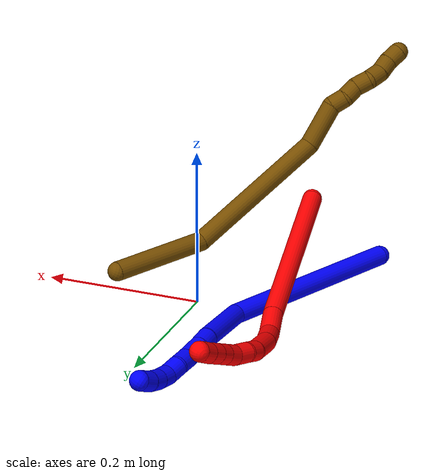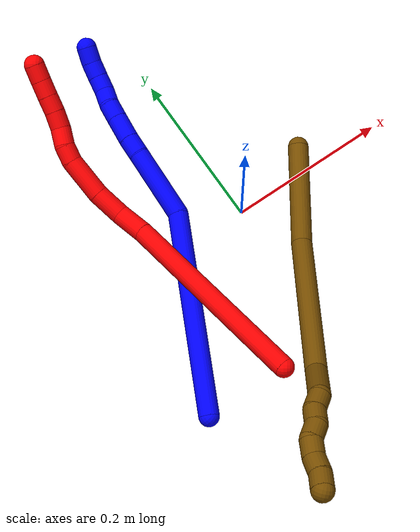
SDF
<sdf version="1.7">
 <world name="default">
  <model name="photoneo_s_sensor">
   <static>1</static>
   <pose>0 0 2 1.57079 1.57079 3.14159</pose>
   <link name="link">
    <inertial><mass>0.1</mass></inertial>
    <sensor name="sensor" type="depth">
     <update_rate>30</update_rate>
     <camera>
      <horizontal_fov>1.22</horizontal_fov>
      <image><width>1920</width><height>1200</height><format>B8G8R8</format></image>
      <clip><near>0.1</near><far>4</far></clip>
      <depth_camera><output>points</output></depth_camera>
     </camera>
     <plugin name="camera_plugin" filename="libgazebo_ros_depth_camera.so">
      <baseline>0.2</baseline>
      <alwaysOn>1</alwaysOn>
      <updateRate>0.0</updateRate>
      <cameraName>camera_ir</cameraName>
      <imageTopicName>/camera/color/image_raw</imageTopicName>
      <cameraInfoTopicName>/camera/color/camera_info</cameraInfoTopicName>
      <depthImageTopicName>/camera/depth/image_raw</depthImageTopicName>
      <depthImageCameraInfoTopicName>/camera/depth/camera_info</depthImageCameraInfoTopicName>
      <pointCloudTopicName>/camera/depth/points</pointCloudTopicName>
      <frameName>fr_optical</frameName>
      <pointCloudCutoff>0.1</pointCloudCutoff>
      <pointCloudCutoffMax>2.0</pointCloudCutoffMax>
      <distortionK1>0</distortionK1>
      <distortionK2>0</distortionK2>
      <distortionK3>0</distortionK3>
      <distortionT1>0</distortionT1>
      <distortionT2>0</distortionT2>
      <CxPrime>0</CxPrime>
      <Cx>0</Cx>
      <Cy>0</Cy>
      <focalLength>0</focalLength>
      <hackBaseline>0</hackBaseline>
     </plugin>
    </sensor>
   </link>
  </model>
  <model name="bin">
   <static>1</static>
   <link name="bottom">
    <collision name="collision-bottom">
     <pose>0 0 -0.01 0 -0 0</pose>
     <geometry><box><size>0.8 0.6 0.02</size></box></geometry>
     <surface>
      <friction><ode><mu>100</mu><mu2>100</mu2></ode></friction>
      <contact><collide_bitmask>65535</collide_bitmask></contact>
     </surface>
    </collision>
   </link>
   <link name="west_wall">
    <collision name="collision-west_wall">
     <pose>-0.41 0 0.1 0 -0 0</pose>
     <geometry><box><size>0.02 0.6 0.2</size></box></geometry>
     <surface>
      <friction><ode><mu>100</mu><mu2>100</mu2></ode></friction>
      <contact><collide_bitmask>65535</collide_bitmask></contact>
     </surface>
    </collision>
   </link>
   <link name="east_wall">
    <collision name="collision-east_wall">
     <pose>0.41 0 0.1 0 -0 0</pose>
     <geometry><box><size>0.02 0.6 0.2</size></box></geometry>
     <surface>
      <friction><ode><mu>100</mu><mu2>100</mu2></ode></friction>
      <contact><collide_bitmask>65535</collide_bitmask></contact>
     </surface>
    </collision>
   </link>
   <link name="south_wall">
    <collision name="collision-south_wall">
     <pose>0 -0.31 0.1 0 -0 0</pose>
     <geometry><box><size>0.8 0.02 0.2</size></box></geometry>
     <surface>
      <friction><ode><mu>100</mu><mu2>100</mu2></ode></friction>
      <contact><collide_bitmask>65535</collide_bitmask></contact>
     </surface>
    </collision>
   </link>
   <link name="north_wall">
    <collision name="collision-north_wall">
     <pose>0 0.31 0.1 0 -0 0</pose>
     <geometry><box><size>0.8 0.02 0.2</size></box></geometry>
     <surface>
      <friction><ode><mu>100</mu><mu2>100</mu2></ode></friction>
      <contact><collide_bitmask>65535</collide_bitmask></contact>
     </surface>
    </collision>
   </link>
  </model>
  <model name="1">
   <static>0</static>
   <link name="1">
    <collision name="collision-cylinder-e_1_1_4">
     <pose>0.029111 0.109974 0.054061 -1.1139 0.233233 -0.145641</pose>
     <geometry><cylinder><radius>0.0125</radius><length>0.251907</length></cylinder></geometry>
     <surface>
      <friction><ode><mu>1.16</mu><mu2>1.16</mu2><slip1>0</slip1><slip2>0</slip2></ode></friction>
      <contact><ode><kp>1e+06</kp><kd>1</kd><max_vel>0</max_vel><min_depth>0.001</min_depth></ode></contact>
     </surface>
    </collision>
    <visual name="visual-cylinder-e_1_1_4">
     <pose>0.029111 0.109974 0.054061 -1.1139 0.233233 -0.145641</pose>
     <geometry><cylinder><radius>0.0125</radius><length>0.251907</length></cylinder></geometry>
     <material><ambient>0 0 1 1</ambient></material>
    </visual>
    <collision name="collision-cylinder-e_2_4_5">
     <pose>0.056324 0.264243 0.113251 -1.45553 -0.042545 0.037904</pose>
     <geometry><cylinder><radius>0.0125</radius><length>0.089263</length></cylinder></geometry>
     <surface>
      <friction><ode><mu>1.16</mu><mu2>1.16</mu2><slip1>0</slip1><slip2>0</slip2></ode></friction>
      <contact><ode><kp>1e+06</kp><kd>1</kd><max_vel>0</max_vel><min_depth>0.001</min_depth></ode></contact>
     </surface>
    </collision>
    <visual name="visual-cylinder-e_2_4_5">
     <pose>0.056324 0.264243 0.113251 -1.45553 -0.042545 0.037904</pose>
     <geometry><cylinder><radius>0.0125</radius><length>0.089263</length></cylinder></geometry>
     <material><ambient>0 0 1 1</ambient></material>
    </visual>
    <collision name="collision-cylinder-e_3_5_6">
     <pose>0.055462 0.320183 0.119123 -1.50702 0.088629 -0.083155</pose>
     <geometry><cylinder><radius>0.0125</radius><length>0.02343</length></cylinder></geometry>
     <surface>
      <friction><ode><mu>1.16</mu><mu2>1.16</mu2><slip1>0</slip1><slip2>0</slip2></ode></friction>
      <contact><ode><kp>1e+06</kp><kd>1</kd><max_vel>0</max_vel><min_depth>0.001</min_depth></ode></contact>
     </surface>
    </collision>
    <visual name="visual-cylinder-e_3_5_6">
     <pose>0.055462 0.320183 0.119123 -1.50702 0.088629 -0.083155</pose>
     <geometry><cylinder><radius>0.0125</radius><length>0.02343</length></cylinder></geometry>
     <material><ambient>0 0 1 1</ambient></material>
    </visual>
    <collision name="collision-cylinder-e_4_6_7">
     <pose>0.058563 0.347696 0.121768 -1.45156 0.128402 -0.113971</pose>
     <geometry><cylinder><radius>0.0125</radius><length>0.032228</length></cylinder></geometry>
     <surface>
      <friction><ode><mu>1.16</mu><mu2>1.16</mu2><slip1>0</slip1><slip2>0</slip2></ode></friction>
      <contact><ode><kp>1e+06</kp><kd>1</kd><max_vel>0</max_vel><min_depth>0.001</min_depth></ode></contact>
     </surface>
    </collision>
    <visual name="visual-cylinder-e_4_6_7">
     <pose>0.058563 0.347696 0.121768 -1.45156 0.128402 -0.113971</pose>
     <geometry><cylinder><radius>0.0125</radius><length>0.032228</length></cylinder></geometry>
     <material><ambient>0 0 1 1</ambient></material>
    </visual>
    <collision name="collision-cylinder-e_5_7_8">
     <pose>0.061497 0.374428 0.125251 -1.42618 0.079157 -0.068473</pose>
     <geometry><cylinder><radius>0.0125</radius><length>0.022026</length></cylinder></geometry>
     <surface>
      <friction><ode><mu>1.16</mu><mu2>1.16</mu2><slip1>0</slip1><slip2>0</slip2></ode></friction>
      <contact><ode><kp>1e+06</kp><kd>1</kd><max_vel>0</max_vel><min_depth>0.001</min_depth></ode></contact>
     </surface>
    </collision>
    <visual name="visual-cylinder-e_5_7_8">
     <pose>0.061497 0.374428 0.125251 -1.42618 0.079157 -0.068473</pose>
     <geometry><cylinder><radius>0.0125</radius><length>0.022026</length></cylinder></geometry>
     <material><ambient>0 0 1 1</ambient></material>
    </visual>
    <collision name="collision-cylinder-e_6_8_9">
     <pose>0.065758 0.394836 0.128829 -1.3647 0.334612 -0.272752</pose>
     <geometry><cylinder><radius>0.0125</radius><length>0.020646</length></cylinder></geometry>
     <surface>
      <friction><ode><mu>1.16</mu><mu2>1.16</mu2><slip1>0</slip1><slip2>0</slip2></ode></friction>
      <contact><ode><kp>1e+06</kp><kd>1</kd><max_vel>0</max_vel><min_depth>0.001</min_depth></ode></contact>
     </surface>
    </collision>
    <visual name="visual-cylinder-e_6_8_9">
     <pose>0.065758 0.394836 0.128829 -1.3647 0.334612 -0.272752</pose>
     <geometry><cylinder><radius>0.0125</radius><length>0.020646</length></cylinder></geometry>
     <material><ambient>0 0 1 1</ambient></material>
    </visual>
    <collision name="collision-cylinder-e_7_9_10">
     <pose>0.068948 0.414186 0.133451 -1.30899 -0.019641 0.015071</pose>
     <geometry><cylinder><radius>0.0125</radius><length>0.020307</length></cylinder></geometry>
     <surface>
      <friction><ode><mu>1.16</mu><mu2>1.16</mu2><slip1>0</slip1><slip2>0</slip2></ode></friction>
      <contact><ode><kp>1e+06</kp><kd>1</kd><max_vel>0</max_vel><min_depth>0.001</min_depth></ode></contact>
     </surface>
    </collision>
    <visual name="visual-cylinder-e_7_9_10">
     <pose>0.068948 0.414186 0.133451 -1.30899 -0.019641 0.015071</pose>
     <geometry><cylinder><radius>0.0125</radius><length>0.020307</length></cylinder></geometry>
     <material><ambient>0 0 1 1</ambient></material>
    </visual>
    <collision name="collision-cylinder-e_8_10_11">
     <pose>0.067218 0.433355 0.139254 -1.24384 -0.153639 0.110236</pose>
     <geometry><cylinder><radius>0.0125</radius><length>0.02001</length></cylinder></geometry>
     <surface>
      <friction><ode><mu>1.16</mu><mu2>1.16</mu2><slip1>0</slip1><slip2>0</slip2></ode></friction>
      <contact><ode><kp>1e+06</kp><kd>1</kd><max_vel>0</max_vel><min_depth>0.001</min_depth></ode></contact>
     </surface>
    </collision>
    <visual name="visual-cylinder-e_8_10_11">
     <pose>0.067218 0.433355 0.139254 -1.24384 -0.153639 0.110236</pose>
     <geometry><cylinder><radius>0.0125</radius><length>0.02001</length></cylinder></geometry>
     <material><ambient>0 0 1 1</ambient></material>
    </visual>
    <collision name="collision-cylinder-e_9_11_2">
     <pose>0.06329 0.451406 0.146971 -1.08915 -0.239777 0.145667</pose>
     <geometry><cylinder><radius>0.0125</radius><length>0.020183</length></cylinder></geometry>
     <surface>
      <friction><ode><mu>1.16</mu><mu2>1.16</mu2><slip1>0</slip1><slip2>0</slip2></ode></friction>
      <contact><ode><kp>1e+06</kp><kd>1</kd><max_vel>0</max_vel><min_depth>0.001</min_depth></ode></contact>
     </surface>
    </collision>
    <visual name="visual-cylinder-e_9_11_2">
     <pose>0.06329 0.451406 0.146971 -1.08915 -0.239777 0.145667</pose>
     <geometry><cylinder><radius>0.0125</radius><length>0.020183</length></cylinder></geometry>
     <material><ambient>0 0 1 1</ambient></material>
    </visual>
    <collision name="collision-sphere-2">
     <pose>0.060894 0.460093 0.151512 0 -0 0</pose>
     <geometry><sphere><radius>0.0125</radius></sphere></geometry>
     <surface>
      <friction><ode><mu>1.16</mu><mu2>1.16</mu2><slip1>0</slip1><slip2>0</slip2></ode></friction>
      <contact><ode><kp>1e+06</kp><kd>1</kd><max_vel>0</max_vel><min_depth>0.001</min_depth></ode></contact>
     </surface>
    </collision>
    <visual name="visual-sphere-2">
     <pose>0.060894 0.460093 0.151512 0 -0 0</pose>
     <geometry><sphere><radius>0.0125</radius></sphere></geometry>
     <material><ambient>0 0 1 1</ambient></material>
    </visual>
    <collision name="collision-sphere-11">
     <pose>0.065687 0.442719 0.14243 0 -0 0</pose>
     <geometry><sphere><radius>0.0125</radius></sphere></geometry>
     <surface>
      <friction><ode><mu>1.16</mu><mu2>1.16</mu2><slip1>0</slip1><slip2>0</slip2></ode></friction>
      <contact><ode><kp>1e+06</kp><kd>1</kd><max_vel>0</max_vel><min_depth>0.001</min_depth></ode></contact>
     </surface>
    </collision>
    <visual name="visual-sphere-11">
     <pose>0.065687 0.442719 0.14243 0 -0 0</pose>
     <geometry><sphere><radius>0.0125</radius></sphere></geometry>
     <material><ambient>0 0 1 1</ambient></material>
    </visual>
    <collision name="collision-sphere-10">
     <pose>0.068749 0.423992 0.136079 0 -0 0</pose>
     <geometry><sphere><radius>0.0125</radius></sphere></geometry>
     <surface>
      <friction><ode><mu>1.16</mu><mu2>1.16</mu2><slip1>0</slip1><slip2>0</slip2></ode></friction>
      <contact><ode><kp>1e+06</kp><kd>1</kd><max_vel>0</max_vel><min_depth>0.001</min_depth></ode></contact>
     </surface>
    </collision>
    <visual name="visual-sphere-10">
     <pose>0.068749 0.423992 0.136079 0 -0 0</pose>
     <geometry><sphere><radius>0.0125</radius></sphere></geometry>
     <material><ambient>0 0 1 1</ambient></material>
    </visual>
    <collision name="collision-sphere-9">
     <pose>0.069148 0.40438 0.130824 0 -0 0</pose>
     <geometry><sphere><radius>0.0125</radius></sphere></geometry>
     <surface>
      <friction><ode><mu>1.16</mu><mu2>1.16</mu2><slip1>0</slip1><slip2>0</slip2></ode></friction>
      <contact><ode><kp>1e+06</kp><kd>1</kd><max_vel>0</max_vel><min_depth>0.001</min_depth></ode></contact>
     </surface>
    </collision>
    <visual name="visual-sphere-9">
     <pose>0.069148 0.40438 0.130824 0 -0 0</pose>
     <geometry><sphere><radius>0.0125</radius></sphere></geometry>
     <material><ambient>0 0 1 1</ambient></material>
    </visual>
    <collision name="collision-sphere-4">
     <pose>0.058222 0.219947 0.108122 0 -0 0</pose>
     <geometry><sphere><radius>0.0125</radius></sphere></geometry>
     <surface>
      <friction><ode><mu>1.16</mu><mu2>1.16</mu2><slip1>0</slip1><slip2>0</slip2></ode></friction>
      <contact><ode><kp>1e+06</kp><kd>1</kd><max_vel>0</max_vel><min_depth>0.001</min_depth></ode></contact>
     </surface>
    </collision>
    <visual name="visual-sphere-4">
     <pose>0.058222 0.219947 0.108122 0 -0 0</pose>
     <geometry><sphere><radius>0.0125</radius></sphere></geometry>
     <material><ambient>0 0 1 1</ambient></material>
    </visual>
    <collision name="collision-sphere-1">
     <geometry><sphere><radius>0.0125</radius></sphere></geometry>
     <surface>
      <friction><ode><mu>1.16</mu><mu2>1.16</mu2><slip1>0</slip1><slip2>0</slip2></ode></friction>
      <contact><ode><kp>1e+06</kp><kd>1</kd><max_vel>0</max_vel><min_depth>0.001</min_depth></ode></contact>
     </surface>
    </collision>
    <visual name="visual-sphere-1">
     <geometry><sphere><radius>0.0125</radius></sphere></geometry>
     <material><ambient>0 0 1 1</ambient></material>
    </visual>
    <collision name="collision-sphere-8">
     <pose>0.062368 0.385292 0.126833 0 -0 0</pose>
     <geometry><sphere><radius>0.0125</radius></sphere></geometry>
     <surface>
      <friction><ode><mu>1.16</mu><mu2>1.16</mu2><slip1>0</slip1><slip2>0</slip2></ode></friction>
      <contact><ode><kp>1e+06</kp><kd>1</kd><max_vel>0</max_vel><min_depth>0.001</min_depth></ode></contact>
     </surface>
    </collision>
    <visual name="visual-sphere-8">
     <pose>0.062368 0.385292 0.126833 0 -0 0</pose>
     <geometry><sphere><radius>0.0125</radius></sphere></geometry>
     <material><ambient>0 0 1 1</ambient></material>
    </visual>
    <collision name="collision-sphere-5">
     <pose>0.054425 0.308538 0.11838 0 -0 0</pose>
     <geometry><sphere><radius>0.0125</radius></sphere></geometry>
     <surface>
      <friction><ode><mu>1.16</mu><mu2>1.16</mu2><slip1>0</slip1><slip2>0</slip2></ode></friction>
      <contact><ode><kp>1e+06</kp><kd>1</kd><max_vel>0</max_vel><min_depth>0.001</min_depth></ode></contact>
     </surface>
    </collision>
    <visual name="visual-sphere-5">
     <pose>0.054425 0.308538 0.11838 0 -0 0</pose>
     <geometry><sphere><radius>0.0125</radius></sphere></geometry>
     <material><ambient>0 0 1 1</ambient></material>
    </visual>
    <collision name="collision-sphere-6">
     <pose>0.056499 0.331828 0.119867 0 -0 0</pose>
     <geometry><sphere><radius>0.0125</radius></sphere></geometry>
     <surface>
      <friction><ode><mu>1.16</mu><mu2>1.16</mu2><slip1>0</slip1><slip2>0</slip2></ode></friction>
      <contact><ode><kp>1e+06</kp><kd>1</kd><max_vel>0</max_vel><min_depth>0.001</min_depth></ode></contact>
     </surface>
    </collision>
    <visual name="visual-sphere-6">
     <pose>0.056499 0.331828 0.119867 0 -0 0</pose>
     <geometry><sphere><radius>0.0125</radius></sphere></geometry>
     <material><ambient>0 0 1 1</ambient></material>
    </visual>
    <collision name="collision-sphere-7">
     <pose>0.060626 0.363564 0.123669 0 -0 0</pose>
     <geometry><sphere><radius>0.0125</radius></sphere></geometry>
     <surface>
      <friction><ode><mu>1.16</mu><mu2>1.16</mu2><slip1>0</slip1><slip2>0</slip2></ode></friction>
      <contact><ode><kp>1e+06</kp><kd>1</kd><max_vel>0</max_vel><min_depth>0.001</min_depth></ode></contact>
     </surface>
    </collision>
    <visual name="visual-sphere-7">
     <pose>0.060626 0.363564 0.123669 0 -0 0</pose>
     <geometry><sphere><radius>0.0125</radius></sphere></geometry>
     <material><ambient>0 0 1 1</ambient></material>
    </visual>
    <inertial>
     <pose>0.044565 0.225179 0.088649 0 -0 0</pose>
     <mass>0.5</mass>
     <inertia>
      <ixx>0.001185</ixx>
      <ixy>0</ixy>
      <ixz>0</ixz>
      <iyy>0.000485</iyy>
      <iyz>0</iyz>
      <izz>-0.001544</izz>
     </inertia>
    </inertial>
   </link>
   <pose>-0.176173 -0.187347 0.014209 -0.011574 1.08673 0.049725</pose>
  </model>
  <model name="2">
   <static>0</static>
   <link name="2">
    <collision name="collision-cylinder-e_1_1_4">
     <pose>0.025242 0.085342 -0.085449 -2.35682 0.206047 -0.489631</pose>
     <geometry><cylinder><radius>0.0125</radius><length>0.246755</length></cylinder></geometry>
     <surface>
      <friction><ode><mu>1.16</mu><mu2>1.16</mu2><slip1>0</slip1><slip2>0</slip2></ode></friction>
      <contact><ode><kp>1e+06</kp><kd>1</kd><max_vel>0</max_vel><min_depth>0.001</min_depth></ode></contact>
     </surface>
    </collision>
    <visual name="visual-cylinder-e_1_1_4">
     <pose>0.025242 0.085342 -0.085449 -2.35682 0.206047 -0.489631</pose>
     <geometry><cylinder><radius>0.0125</radius><length>0.246755</length></cylinder></geometry>
     <material><ambient>1 0 0 1</ambient></material>
    </visual>
    <collision name="collision-cylinder-e_2_4_5">
     <pose>0.054332 0.182892 -0.185481 -2.4446 0.199623 -0.537905</pose>
     <geometry><cylinder><radius>0.0125</radius><length>0.038807</length></cylinder></geometry>
     <surface>
      <friction><ode><mu>1.16</mu><mu2>1.16</mu2><slip1>0</slip1><slip2>0</slip2></ode></friction>
      <contact><ode><kp>1e+06</kp><kd>1</kd><max_vel>0</max_vel><min_depth>0.001</min_depth></ode></contact>
     </surface>
    </collision>
    <visual name="visual-cylinder-e_2_4_5">
     <pose>0.054332 0.182892 -0.185481 -2.4446 0.199623 -0.537905</pose>
     <geometry><cylinder><radius>0.0125</radius><length>0.038807</length></cylinder></geometry>
     <material><ambient>1 0 0 1</ambient></material>
    </visual>
    <collision name="collision-cylinder-e_3_5_6">
     <pose>0.054674 0.207017 -0.213855 -2.42899 -0.190034 0.501356</pose>
     <geometry><cylinder><radius>0.0125</radius><length>0.03712</length></cylinder></geometry>
     <surface>
      <friction><ode><mu>1.16</mu><mu2>1.16</mu2><slip1>0</slip1><slip2>0</slip2></ode></friction>
      <contact><ode><kp>1e+06</kp><kd>1</kd><max_vel>0</max_vel><min_depth>0.001</min_depth></ode></contact>
     </surface>
    </collision>
    <visual name="visual-cylinder-e_3_5_6">
     <pose>0.054674 0.207017 -0.213855 -2.42899 -0.190034 0.501356</pose>
     <geometry><cylinder><radius>0.0125</radius><length>0.03712</length></cylinder></geometry>
     <material><ambient>1 0 0 1</ambient></material>
    </visual>
    <collision name="collision-cylinder-e_4_6_7">
     <pose>0.045078 0.237785 -0.243729 -2.2771 -0.240978 0.513307</pose>
     <geometry><cylinder><radius>0.0125</radius><length>0.051037</length></cylinder></geometry>
     <surface>
      <friction><ode><mu>1.16</mu><mu2>1.16</mu2><slip1>0</slip1><slip2>0</slip2></ode></friction>
      <contact><ode><kp>1e+06</kp><kd>1</kd><max_vel>0</max_vel><min_depth>0.001</min_depth></ode></contact>
     </surface>
    </collision>
    <visual name="visual-cylinder-e_4_6_7">
     <pose>0.045078 0.237785 -0.243729 -2.2771 -0.240978 0.513307</pose>
     <geometry><cylinder><radius>0.0125</radius><length>0.051037</length></cylinder></geometry>
     <material><ambient>1 0 0 1</ambient></material>
    </visual>
    <collision name="collision-cylinder-e_5_7_8">
     <pose>0.035779 0.26564 -0.264299 -2.03312 -0.308808 0.492708</pose>
     <geometry><cylinder><radius>0.0125</radius><length>0.021116</length></cylinder></geometry>
     <surface>
      <friction><ode><mu>1.16</mu><mu2>1.16</mu2><slip1>0</slip1><slip2>0</slip2></ode></friction>
      <contact><ode><kp>1e+06</kp><kd>1</kd><max_vel>0</max_vel><min_depth>0.001</min_depth></ode></contact>
     </surface>
    </collision>
    <visual name="visual-cylinder-e_5_7_8">
     <pose>0.035779 0.26564 -0.264299 -2.03312 -0.308808 0.492708</pose>
     <geometry><cylinder><radius>0.0125</radius><length>0.021116</length></cylinder></geometry>
     <material><ambient>1 0 0 1</ambient></material>
    </visual>
    <collision name="collision-cylinder-e_6_8_9">
     <pose>0.030678 0.285478 -0.271506 -1.81683 -0.167816 0.214846</pose>
     <geometry><cylinder><radius>0.0125</radius><length>0.022662</length></cylinder></geometry>
     <surface>
      <friction><ode><mu>1.16</mu><mu2>1.16</mu2><slip1>0</slip1><slip2>0</slip2></ode></friction>
      <contact><ode><kp>1e+06</kp><kd>1</kd><max_vel>0</max_vel><min_depth>0.001</min_depth></ode></contact>
     </surface>
    </collision>
    <visual name="visual-cylinder-e_6_8_9">
     <pose>0.030678 0.285478 -0.271506 -1.81683 -0.167816 0.214846</pose>
     <geometry><cylinder><radius>0.0125</radius><length>0.022662</length></cylinder></geometry>
     <material><ambient>1 0 0 1</ambient></material>
    </visual>
    <collision name="collision-cylinder-e_7_9_10">
     <pose>0.024411 0.305543 -0.277718 -1.9324 -0.417265 0.594689</pose>
     <geometry><cylinder><radius>0.0125</radius><length>0.021587</length></cylinder></geometry>
     <surface>
      <friction><ode><mu>1.16</mu><mu2>1.16</mu2><slip1>0</slip1><slip2>0</slip2></ode></friction>
      <contact><ode><kp>1e+06</kp><kd>1</kd><max_vel>0</max_vel><min_depth>0.001</min_depth></ode></contact>
     </surface>
    </collision>
    <visual name="visual-cylinder-e_7_9_10">
     <pose>0.024411 0.305543 -0.277718 -1.9324 -0.417265 0.594689</pose>
     <geometry><cylinder><radius>0.0125</radius><length>0.021587</length></cylinder></geometry>
     <material><ambient>1 0 0 1</ambient></material>
    </visual>
    <collision name="collision-cylinder-e_8_10_11">
     <pose>0.01585 0.322967 -0.285141 -2.01814 -0.431611 0.670356</pose>
     <geometry><cylinder><radius>0.0125</radius><length>0.020014</length></cylinder></geometry>
     <surface>
      <friction><ode><mu>1.16</mu><mu2>1.16</mu2><slip1>0</slip1><slip2>0</slip2></ode></friction>
      <contact><ode><kp>1e+06</kp><kd>1</kd><max_vel>0</max_vel><min_depth>0.001</min_depth></ode></contact>
     </surface>
    </collision>
    <visual name="visual-cylinder-e_8_10_11">
     <pose>0.01585 0.322967 -0.285141 -2.01814 -0.431611 0.670356</pose>
     <geometry><cylinder><radius>0.0125</radius><length>0.020014</length></cylinder></geometry>
     <material><ambient>1 0 0 1</ambient></material>
    </visual>
    <collision name="collision-cylinder-e_9_11_12">
     <pose>0.007455 0.339576 -0.292898 -1.99749 -0.427301 0.650038</pose>
     <geometry><cylinder><radius>0.0125</radius><length>0.020312</length></cylinder></geometry>
     <surface>
      <friction><ode><mu>1.16</mu><mu2>1.16</mu2><slip1>0</slip1><slip2>0</slip2></ode></friction>
      <contact><ode><kp>1e+06</kp><kd>1</kd><max_vel>0</max_vel><min_depth>0.001</min_depth></ode></contact>
     </surface>
    </collision>
    <visual name="visual-cylinder-e_9_11_12">
     <pose>0.007455 0.339576 -0.292898 -1.99749 -0.427301 0.650038</pose>
     <geometry><cylinder><radius>0.0125</radius><length>0.020312</length></cylinder></geometry>
     <material><ambient>1 0 0 1</ambient></material>
    </visual>
    <collision name="collision-cylinder-e_10_12_2">
     <pose>-0.001395 0.35641 -0.300405 -1.98303 -0.467746 0.698524</pose>
     <geometry><cylinder><radius>0.0125</radius><length>0.02059</length></cylinder></geometry>
     <surface>
      <friction><ode><mu>1.16</mu><mu2>1.16</mu2><slip1>0</slip1><slip2>0</slip2></ode></friction>
      <contact><ode><kp>1e+06</kp><kd>1</kd><max_vel>0</max_vel><min_depth>0.001</min_depth></ode></contact>
     </surface>
    </collision>
    <visual name="visual-cylinder-e_10_12_2">
     <pose>-0.001395 0.35641 -0.300405 -1.98303 -0.467746 0.698524</pose>
     <geometry><cylinder><radius>0.0125</radius><length>0.02059</length></cylinder></geometry>
     <material><ambient>1 0 0 1</ambient></material>
    </visual>
    <collision name="collision-sphere-2">
     <pose>-0.006037 0.364829 -0.304087 0 -0 0</pose>
     <geometry><sphere><radius>0.0125</radius></sphere></geometry>
     <surface>
      <friction><ode><mu>1.16</mu><mu2>1.16</mu2><slip1>0</slip1><slip2>0</slip2></ode></friction>
      <contact><ode><kp>1e+06</kp><kd>1</kd><max_vel>0</max_vel><min_depth>0.001</min_depth></ode></contact>
     </surface>
    </collision>
    <visual name="visual-sphere-2">
     <pose>-0.006037 0.364829 -0.304087 0 -0 0</pose>
     <geometry><sphere><radius>0.0125</radius></sphere></geometry>
     <material><ambient>1 0 0 1</ambient></material>
    </visual>
    <collision name="collision-sphere-12">
     <pose>0.003247 0.34799 -0.296723 0 -0 0</pose>
     <geometry><sphere><radius>0.0125</radius></sphere></geometry>
     <surface>
      <friction><ode><mu>1.16</mu><mu2>1.16</mu2><slip1>0</slip1><slip2>0</slip2></ode></friction>
      <contact><ode><kp>1e+06</kp><kd>1</kd><max_vel>0</max_vel><min_depth>0.001</min_depth></ode></contact>
     </surface>
    </collision>
    <visual name="visual-sphere-12">
     <pose>0.003247 0.34799 -0.296723 0 -0 0</pose>
     <geometry><sphere><radius>0.0125</radius></sphere></geometry>
     <material><ambient>1 0 0 1</ambient></material>
    </visual>
    <collision name="collision-sphere-11">
     <pose>0.011664 0.331162 -0.289073 0 -0 0</pose>
     <geometry><sphere><radius>0.0125</radius></sphere></geometry>
     <surface>
      <friction><ode><mu>1.16</mu><mu2>1.16</mu2><slip1>0</slip1><slip2>0</slip2></ode></friction>
      <contact><ode><kp>1e+06</kp><kd>1</kd><max_vel>0</max_vel><min_depth>0.001</min_depth></ode></contact>
     </surface>
    </collision>
    <visual name="visual-sphere-11">
     <pose>0.011664 0.331162 -0.289073 0 -0 0</pose>
     <geometry><sphere><radius>0.0125</radius></sphere></geometry>
     <material><ambient>1 0 0 1</ambient></material>
    </visual>
    <collision name="collision-sphere-10">
     <pose>0.020037 0.314772 -0.281209 0 -0 0</pose>
     <geometry><sphere><radius>0.0125</radius></sphere></geometry>
     <surface>
      <friction><ode><mu>1.16</mu><mu2>1.16</mu2><slip1>0</slip1><slip2>0</slip2></ode></friction>
      <contact><ode><kp>1e+06</kp><kd>1</kd><max_vel>0</max_vel><min_depth>0.001</min_depth></ode></contact>
     </surface>
    </collision>
    <visual name="visual-sphere-10">
     <pose>0.020037 0.314772 -0.281209 0 -0 0</pose>
     <geometry><sphere><radius>0.0125</radius></sphere></geometry>
     <material><ambient>1 0 0 1</ambient></material>
    </visual>
    <collision name="collision-sphere-9">
     <pose>0.028785 0.296314 -0.274227 0 -0 0</pose>
     <geometry><sphere><radius>0.0125</radius></sphere></geometry>
     <surface>
      <friction><ode><mu>1.16</mu><mu2>1.16</mu2><slip1>0</slip1><slip2>0</slip2></ode></friction>
      <contact><ode><kp>1e+06</kp><kd>1</kd><max_vel>0</max_vel><min_depth>0.001</min_depth></ode></contact>
     </surface>
    </collision>
    <visual name="visual-sphere-9">
     <pose>0.028785 0.296314 -0.274227 0 -0 0</pose>
     <geometry><sphere><radius>0.0125</radius></sphere></geometry>
     <material><ambient>1 0 0 1</ambient></material>
    </visual>
    <collision name="collision-sphere-4">
     <pose>0.050484 0.170684 -0.170899 0 -0 0</pose>
     <geometry><sphere><radius>0.0125</radius></sphere></geometry>
     <surface>
      <friction><ode><mu>1.16</mu><mu2>1.16</mu2><slip1>0</slip1><slip2>0</slip2></ode></friction>
      <contact><ode><kp>1e+06</kp><kd>1</kd><max_vel>0</max_vel><min_depth>0.001</min_depth></ode></contact>
     </surface>
    </collision>
    <visual name="visual-sphere-4">
     <pose>0.050484 0.170684 -0.170899 0 -0 0</pose>
     <geometry><sphere><radius>0.0125</radius></sphere></geometry>
     <material><ambient>1 0 0 1</ambient></material>
    </visual>
    <collision name="collision-sphere-1">
     <geometry><sphere><radius>0.0125</radius></sphere></geometry>
     <surface>
      <friction><ode><mu>1.16</mu><mu2>1.16</mu2><slip1>0</slip1><slip2>0</slip2></ode></friction>
      <contact><ode><kp>1e+06</kp><kd>1</kd><max_vel>0</max_vel><min_depth>0.001</min_depth></ode></contact>
     </surface>
    </collision>
    <visual name="visual-sphere-1">
     <geometry><sphere><radius>0.0125</radius></sphere></geometry>
     <material><ambient>1 0 0 1</ambient></material>
    </visual>
    <collision name="collision-sphere-8">
     <pose>0.03257 0.274643 -0.268785 0 -0 0</pose>
     <geometry><sphere><radius>0.0125</radius></sphere></geometry>
     <surface>
      <friction><ode><mu>1.16</mu><mu2>1.16</mu2><slip1>0</slip1><slip2>0</slip2></ode></friction>
      <contact><ode><kp>1e+06</kp><kd>1</kd><max_vel>0</max_vel><min_depth>0.001</min_depth></ode></contact>
     </surface>
    </collision>
    <visual name="visual-sphere-8">
     <pose>0.03257 0.274643 -0.268785 0 -0 0</pose>
     <geometry><sphere><radius>0.0125</radius></sphere></geometry>
     <material><ambient>1 0 0 1</ambient></material>
    </visual>
    <collision name="collision-sphere-5">
     <pose>0.05818 0.1951 -0.200064 0 -0 0</pose>
     <geometry><sphere><radius>0.0125</radius></sphere></geometry>
     <surface>
      <friction><ode><mu>1.16</mu><mu2>1.16</mu2><slip1>0</slip1><slip2>0</slip2></ode></friction>
      <contact><ode><kp>1e+06</kp><kd>1</kd><max_vel>0</max_vel><min_depth>0.001</min_depth></ode></contact>
     </surface>
    </collision>
    <visual name="visual-sphere-5">
     <pose>0.05818 0.1951 -0.200064 0 -0 0</pose>
     <geometry><sphere><radius>0.0125</radius></sphere></geometry>
     <material><ambient>1 0 0 1</ambient></material>
    </visual>
    <collision name="collision-sphere-6">
     <pose>0.051168 0.218933 -0.227646 0 -0 0</pose>
     <geometry><sphere><radius>0.0125</radius></sphere></geometry>
     <surface>
      <friction><ode><mu>1.16</mu><mu2>1.16</mu2><slip1>0</slip1><slip2>0</slip2></ode></friction>
      <contact><ode><kp>1e+06</kp><kd>1</kd><max_vel>0</max_vel><min_depth>0.001</min_depth></ode></contact>
     </surface>
    </collision>
    <visual name="visual-sphere-6">
     <pose>0.051168 0.218933 -0.227646 0 -0 0</pose>
     <geometry><sphere><radius>0.0125</radius></sphere></geometry>
     <material><ambient>1 0 0 1</ambient></material>
    </visual>
    <collision name="collision-sphere-7">
     <pose>0.038988 0.256638 -0.259813 0 -0 0</pose>
     <geometry><sphere><radius>0.0125</radius></sphere></geometry>
     <surface>
      <friction><ode><mu>1.16</mu><mu2>1.16</mu2><slip1>0</slip1><slip2>0</slip2></ode></friction>
      <contact><ode><kp>1e+06</kp><kd>1</kd><max_vel>0</max_vel><min_depth>0.001</min_depth></ode></contact>
     </surface>
    </collision>
    <visual name="visual-sphere-7">
     <pose>0.038988 0.256638 -0.259813 0 -0 0</pose>
     <geometry><sphere><radius>0.0125</radius></sphere></geometry>
     <material><ambient>1 0 0 1</ambient></material>
    </visual>
    <inertial>
     <pose>0.03017 0.174702 -0.168462 0 -0 0</pose>
     <mass>0.5</mass>
     <inertia>
      <ixx>0.000548</ixx>
      <ixy>0</ixy>
      <ixz>0</ixz>
      <iyy>-0.001259</iyy>
      <iyz>0</iyz>
      <izz>-0.001174</izz>
     </inertia>
    </inertial>
   </link>
   <pose>-0.080093 -0.196928 0.074109 0.582392 1.50781 -0.039478</pose>
  </model>
  <model name="12">
   <static>0</static>
   <link name="12">
    <collision name="collision-cylinder-e_1_1_4">
     <pose>-0.026213 -0.02048 0.053927 0.362946 -0.426531 -0.079432</pose>
     <geometry><cylinder><radius>0.0125</radius><length>0.126723</length></cylinder></geometry>
     <surface>
      <friction><ode><mu>1.16</mu><mu2>1.16</mu2><slip1>0</slip1><slip2>0</slip2></ode></friction>
      <contact><ode><kp>1e+06</kp><kd>1</kd><max_vel>0</max_vel><min_depth>0.001</min_depth></ode></contact>
     </surface>
    </collision>
    <visual name="visual-cylinder-e_1_1_4">
     <pose>-0.026213 -0.02048 0.053927 0.362946 -0.426531 -0.079432</pose>
     <geometry><cylinder><radius>0.0125</radius><length>0.126723</length></cylinder></geometry>
     <material><ambient>0.466667 0.301961 0 1</ambient></material>
    </visual>
    <collision name="collision-cylinder-e_2_4_5">
     <pose>-0.103641 -0.100862 0.165284 0.806456 -0.552933 -0.240911</pose>
     <geometry><cylinder><radius>0.0125</radius><length>0.195033</length></cylinder></geometry>
     <surface>
      <friction><ode><mu>1.16</mu><mu2>1.16</mu2><slip1>0</slip1><slip2>0</slip2></ode></friction>
      <contact><ode><kp>1e+06</kp><kd>1</kd><max_vel>0</max_vel><min_depth>0.001</min_depth></ode></contact>
     </surface>
    </collision>
    <visual name="visual-cylinder-e_2_4_5">
     <pose>-0.103641 -0.100862 0.165284 0.806456 -0.552933 -0.240911</pose>
     <geometry><cylinder><radius>0.0125</radius><length>0.195033</length></cylinder></geometry>
     <material><ambient>0.466667 0.301961 0 1</ambient></material>
    </visual>
    <collision name="collision-cylinder-e_3_5_6">
     <pose>-0.168919 -0.185594 0.228344 1.34787 -0.504655 -0.406157</pose>
     <geometry><cylinder><radius>0.0125</radius><length>0.058173</length></cylinder></geometry>
     <surface>
      <friction><ode><mu>1.16</mu><mu2>1.16</mu2><slip1>0</slip1><slip2>0</slip2></ode></friction>
      <contact><ode><kp>1e+06</kp><kd>1</kd><max_vel>0</max_vel><min_depth>0.001</min_depth></ode></contact>
     </surface>
    </collision>
    <visual name="visual-cylinder-e_3_5_6">
     <pose>-0.168919 -0.185594 0.228344 1.34787 -0.504655 -0.406157</pose>
     <geometry><cylinder><radius>0.0125</radius><length>0.058173</length></cylinder></geometry>
     <material><ambient>0.466667 0.301961 0 1</ambient></material>
    </visual>
    <collision name="collision-cylinder-e_4_6_7">
     <pose>-0.184935 -0.218163 0.240039 0.905994 -0.196049 -0.095662</pose>
     <geometry><cylinder><radius>0.0125</radius><length>0.020048</length></cylinder></geometry>
     <surface>
      <friction><ode><mu>1.16</mu><mu2>1.16</mu2><slip1>0</slip1><slip2>0</slip2></ode></friction>
      <contact><ode><kp>1e+06</kp><kd>1</kd><max_vel>0</max_vel><min_depth>0.001</min_depth></ode></contact>
     </surface>
    </collision>
    <visual name="visual-cylinder-e_4_6_7">
     <pose>-0.184935 -0.218163 0.240039 0.905994 -0.196049 -0.095662</pose>
     <geometry><cylinder><radius>0.0125</radius><length>0.020048</length></cylinder></geometry>
     <material><ambient>0.466667 0.301961 0 1</ambient></material>
    </visual>
    <collision name="collision-cylinder-e_5_7_8">
     <pose>-0.192365 -0.23243 0.251336 0.895227 -0.579674 -0.284441</pose>
     <geometry><cylinder><radius>0.0125</radius><length>0.02</length></cylinder></geometry>
     <surface>
      <friction><ode><mu>1.16</mu><mu2>1.16</mu2><slip1>0</slip1><slip2>0</slip2></ode></friction>
      <contact><ode><kp>1e+06</kp><kd>1</kd><max_vel>0</max_vel><min_depth>0.001</min_depth></ode></contact>
     </surface>
    </collision>
    <visual name="visual-cylinder-e_5_7_8">
     <pose>-0.192365 -0.23243 0.251336 0.895227 -0.579674 -0.284441</pose>
     <geometry><cylinder><radius>0.0125</radius><length>0.02</length></cylinder></geometry>
     <material><ambient>0.466667 0.301961 0 1</ambient></material>
    </visual>
    <collision name="collision-cylinder-e_6_8_9">
     <pose>-0.199669 -0.246317 0.263098 0.845015 -0.18355 -0.082706</pose>
     <geometry><cylinder><radius>0.0125</radius><length>0.020012</length></cylinder></geometry>
     <surface>
      <friction><ode><mu>1.16</mu><mu2>1.16</mu2><slip1>0</slip1><slip2>0</slip2></ode></friction>
      <contact><ode><kp>1e+06</kp><kd>1</kd><max_vel>0</max_vel><min_depth>0.001</min_depth></ode></contact>
     </surface>
    </collision>
    <visual name="visual-cylinder-e_6_8_9">
     <pose>-0.199669 -0.246317 0.263098 0.845015 -0.18355 -0.082706</pose>
     <geometry><cylinder><radius>0.0125</radius><length>0.020012</length></cylinder></geometry>
     <material><ambient>0.466667 0.301961 0 1</ambient></material>
    </visual>
    <collision name="collision-cylinder-e_7_9_10">
     <pose>-0.207017 -0.258002 0.276761 0.54517 -0.584592 -0.167842</pose>
     <geometry><cylinder><radius>0.0125</radius><length>0.020009</length></cylinder></geometry>
     <surface>
      <friction><ode><mu>1.16</mu><mu2>1.16</mu2><slip1>0</slip1><slip2>0</slip2></ode></friction>
      <contact><ode><kp>1e+06</kp><kd>1</kd><max_vel>0</max_vel><min_depth>0.001</min_depth></ode></contact>
     </surface>
    </collision>
    <visual name="visual-cylinder-e_7_9_10">
     <pose>-0.207017 -0.258002 0.276761 0.54517 -0.584592 -0.167842</pose>
     <geometry><cylinder><radius>0.0125</radius><length>0.020009</length></cylinder></geometry>
     <material><ambient>0.466667 0.301961 0 1</ambient></material>
    </visual>
    <collision name="collision-cylinder-e_8_10_11">
     <pose>-0.219676 -0.267463 0.288659 0.822763 -0.794944 -0.362295</pose>
     <geometry><cylinder><radius>0.0125</radius><length>0.020002</length></cylinder></geometry>
     <surface>
      <friction><ode><mu>1.16</mu><mu2>1.16</mu2><slip1>0</slip1><slip2>0</slip2></ode></friction>
      <contact><ode><kp>1e+06</kp><kd>1</kd><max_vel>0</max_vel><min_depth>0.001</min_depth></ode></contact>
     </surface>
    </collision>
    <visual name="visual-cylinder-e_8_10_11">
     <pose>-0.219676 -0.267463 0.288659 0.822763 -0.794944 -0.362295</pose>
     <geometry><cylinder><radius>0.0125</radius><length>0.020002</length></cylinder></geometry>
     <material><ambient>0.466667 0.301961 0 1</ambient></material>
    </visual>
    <collision name="collision-cylinder-e_9_11_2">
     <pose>-0.232249 -0.278709 0.299177 0.81556 -0.574424 -0.253833</pose>
     <geometry><cylinder><radius>0.0125</radius><length>0.020001</length></cylinder></geometry>
     <surface>
      <friction><ode><mu>1.16</mu><mu2>1.16</mu2><slip1>0</slip1><slip2>0</slip2></ode></friction>
      <contact><ode><kp>1e+06</kp><kd>1</kd><max_vel>0</max_vel><min_depth>0.001</min_depth></ode></contact>
     </surface>
    </collision>
    <visual name="visual-cylinder-e_9_11_2">
     <pose>-0.232249 -0.278709 0.299177 0.81556 -0.574424 -0.253833</pose>
     <geometry><cylinder><radius>0.0125</radius><length>0.020001</length></cylinder></geometry>
     <material><ambient>0.466667 0.301961 0 1</ambient></material>
    </visual>
    <collision name="collision-sphere-2">
     <pose>-0.237683 -0.284822 0.304932 0 -0 0</pose>
     <geometry><sphere><radius>0.0125</radius></sphere></geometry>
     <surface>
      <friction><ode><mu>1.16</mu><mu2>1.16</mu2><slip1>0</slip1><slip2>0</slip2></ode></friction>
      <contact><ode><kp>1e+06</kp><kd>1</kd><max_vel>0</max_vel><min_depth>0.001</min_depth></ode></contact>
     </surface>
    </collision>
    <visual name="visual-sphere-2">
     <pose>-0.237683 -0.284822 0.304932 0 -0 0</pose>
     <geometry><sphere><radius>0.0125</radius></sphere></geometry>
     <material><ambient>0.466667 0.301961 0 1</ambient></material>
    </visual>
    <collision name="collision-sphere-11">
     <pose>-0.226815 -0.272597 0.293423 0 -0 0</pose>
     <geometry><sphere><radius>0.0125</radius></sphere></geometry>
     <surface>
      <friction><ode><mu>1.16</mu><mu2>1.16</mu2><slip1>0</slip1><slip2>0</slip2></ode></friction>
      <contact><ode><kp>1e+06</kp><kd>1</kd><max_vel>0</max_vel><min_depth>0.001</min_depth></ode></contact>
     </surface>
    </collision>
    <visual name="visual-sphere-11">
     <pose>-0.226815 -0.272597 0.293423 0 -0 0</pose>
     <geometry><sphere><radius>0.0125</radius></sphere></geometry>
     <material><ambient>0.466667 0.301961 0 1</ambient></material>
    </visual>
    <collision name="collision-sphere-10">
     <pose>-0.212538 -0.262329 0.283895 0 -0 0</pose>
     <geometry><sphere><radius>0.0125</radius></sphere></geometry>
     <surface>
      <friction><ode><mu>1.16</mu><mu2>1.16</mu2><slip1>0</slip1><slip2>0</slip2></ode></friction>
      <contact><ode><kp>1e+06</kp><kd>1</kd><max_vel>0</max_vel><min_depth>0.001</min_depth></ode></contact>
     </surface>
    </collision>
    <visual name="visual-sphere-10">
     <pose>-0.212538 -0.262329 0.283895 0 -0 0</pose>
     <geometry><sphere><radius>0.0125</radius></sphere></geometry>
     <material><ambient>0.466667 0.301961 0 1</ambient></material>
    </visual>
    <collision name="collision-sphere-9">
     <pose>-0.201496 -0.253676 0.269627 0 -0 0</pose>
     <geometry><sphere><radius>0.0125</radius></sphere></geometry>
     <surface>
      <friction><ode><mu>1.16</mu><mu2>1.16</mu2><slip1>0</slip1><slip2>0</slip2></ode></friction>
      <contact><ode><kp>1e+06</kp><kd>1</kd><max_vel>0</max_vel><min_depth>0.001</min_depth></ode></contact>
     </surface>
    </collision>
    <visual name="visual-sphere-9">
     <pose>-0.201496 -0.253676 0.269627 0 -0 0</pose>
     <geometry><sphere><radius>0.0125</radius></sphere></geometry>
     <material><ambient>0.466667 0.301961 0 1</ambient></material>
    </visual>
    <collision name="collision-sphere-4">
     <pose>-0.052427 -0.040959 0.107853 0 -0 0</pose>
     <geometry><sphere><radius>0.0125</radius></sphere></geometry>
     <surface>
      <friction><ode><mu>1.16</mu><mu2>1.16</mu2><slip1>0</slip1><slip2>0</slip2></ode></friction>
      <contact><ode><kp>1e+06</kp><kd>1</kd><max_vel>0</max_vel><min_depth>0.001</min_depth></ode></contact>
     </surface>
    </collision>
    <visual name="visual-sphere-4">
     <pose>-0.052427 -0.040959 0.107853 0 -0 0</pose>
     <geometry><sphere><radius>0.0125</radius></sphere></geometry>
     <material><ambient>0.466667 0.301961 0 1</ambient></material>
    </visual>
    <collision name="collision-sphere-1">
     <geometry><sphere><radius>0.0125</radius></sphere></geometry>
     <surface>
      <friction><ode><mu>1.16</mu><mu2>1.16</mu2><slip1>0</slip1><slip2>0</slip2></ode></friction>
      <contact><ode><kp>1e+06</kp><kd>1</kd><max_vel>0</max_vel><min_depth>0.001</min_depth></ode></contact>
     </surface>
    </collision>
    <visual name="visual-sphere-1">
     <geometry><sphere><radius>0.0125</radius></sphere></geometry>
     <material><ambient>0.466667 0.301961 0 1</ambient></material>
    </visual>
    <collision name="collision-sphere-8">
     <pose>-0.197843 -0.238959 0.256568 0 -0 0</pose>
     <geometry><sphere><radius>0.0125</radius></sphere></geometry>
     <surface>
      <friction><ode><mu>1.16</mu><mu2>1.16</mu2><slip1>0</slip1><slip2>0</slip2></ode></friction>
      <contact><ode><kp>1e+06</kp><kd>1</kd><max_vel>0</max_vel><min_depth>0.001</min_depth></ode></contact>
     </surface>
    </collision>
    <visual name="visual-sphere-8">
     <pose>-0.197843 -0.238959 0.256568 0 -0 0</pose>
     <geometry><sphere><radius>0.0125</radius></sphere></geometry>
     <material><ambient>0.466667 0.301961 0 1</ambient></material>
    </visual>
    <collision name="collision-sphere-5">
     <pose>-0.154856 -0.160764 0.222715 0 -0 0</pose>
     <geometry><sphere><radius>0.0125</radius></sphere></geometry>
     <surface>
      <friction><ode><mu>1.16</mu><mu2>1.16</mu2><slip1>0</slip1><slip2>0</slip2></ode></friction>
      <contact><ode><kp>1e+06</kp><kd>1</kd><max_vel>0</max_vel><min_depth>0.001</min_depth></ode></contact>
     </surface>
    </collision>
    <visual name="visual-sphere-5">
     <pose>-0.154856 -0.160764 0.222715 0 -0 0</pose>
     <geometry><sphere><radius>0.0125</radius></sphere></geometry>
     <material><ambient>0.466667 0.301961 0 1</ambient></material>
    </visual>
    <collision name="collision-sphere-6">
     <pose>-0.182982 -0.210425 0.233973 0 -0 0</pose>
     <geometry><sphere><radius>0.0125</radius></sphere></geometry>
     <surface>
      <friction><ode><mu>1.16</mu><mu2>1.16</mu2><slip1>0</slip1><slip2>0</slip2></ode></friction>
      <contact><ode><kp>1e+06</kp><kd>1</kd><max_vel>0</max_vel><min_depth>0.001</min_depth></ode></contact>
     </surface>
    </collision>
    <visual name="visual-sphere-6">
     <pose>-0.182982 -0.210425 0.233973 0 -0 0</pose>
     <geometry><sphere><radius>0.0125</radius></sphere></geometry>
     <material><ambient>0.466667 0.301961 0 1</ambient></material>
    </visual>
    <collision name="collision-sphere-7">
     <pose>-0.186888 -0.225901 0.246104 0 -0 0</pose>
     <geometry><sphere><radius>0.0125</radius></sphere></geometry>
     <surface>
      <friction><ode><mu>1.16</mu><mu2>1.16</mu2><slip1>0</slip1><slip2>0</slip2></ode></friction>
      <contact><ode><kp>1e+06</kp><kd>1</kd><max_vel>0</max_vel><min_depth>0.001</min_depth></ode></contact>
     </surface>
    </collision>
    <visual name="visual-sphere-7">
     <pose>-0.186888 -0.225901 0.246104 0 -0 0</pose>
     <geometry><sphere><radius>0.0125</radius></sphere></geometry>
     <material><ambient>0.466667 0.301961 0 1</ambient></material>
    </visual>
    <inertial>
     <pose>-0.116187 -0.126202 0.169505 0 -0 0</pose>
     <mass>0.5</mass>
     <inertia><ixx>0.000532</ixx><ixy>0</ixy><ixz>0</ixz><iyy>0.000486</iyy><iyz>0</iyz><izz>0.0009</izz></inertia>
    </inertial>
   </link>
   <pose>0.098785 0.021354 0.034205 -2.01225 0.348169 2.12316</pose>
  </model>
 </world>
</sdf>
